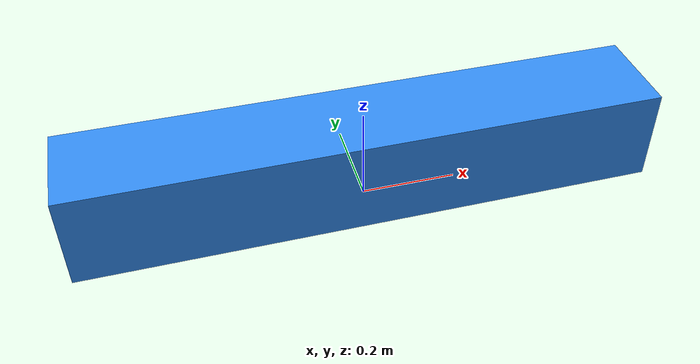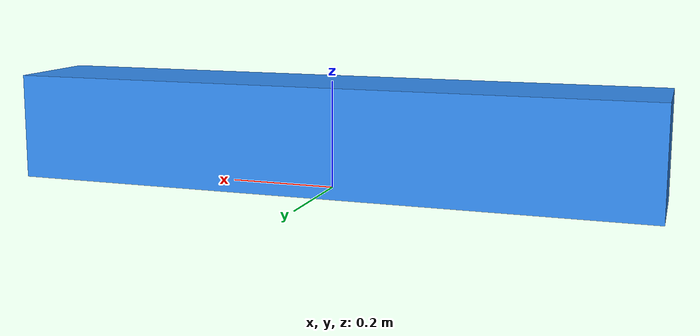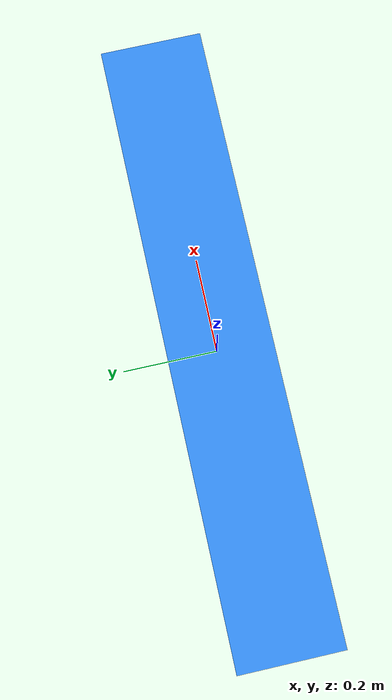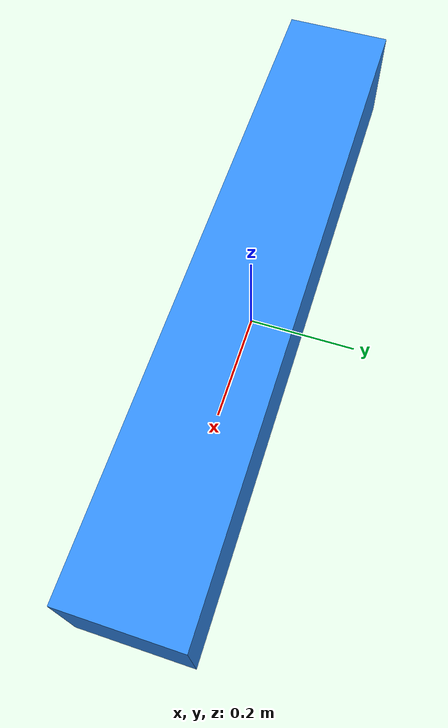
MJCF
<mujoco model="cuboid">
  <option integrator="implicitfast" timestep="0.005" gravity="0 0 -9.81"/>
  <size memory="1000M" nuser_site="6"/>
  <compiler coordinate="local"/>

  <worldbody>
    <light cutoff="30" pos="0 1 1" dir="0 -1 -2"/>
    <light cutoff="30" pos="0 -1 1" dir="0 1 -2"/>

    <!-- 1.2x0.2x0.2 free-floating bar: rotation-teaching object
         (long axis makes Z-rotation visible, unlike the symmetric cube);
         blue to tell apart from the green cube / orange small cube -->
    <body name="cuboid" pos="0 0 0.1">
      <freejoint name="cuboid_joint"/>
      <geom type="box" contype="1" conaffinity="1" density="50"
            rgba="0.20 0.55 0.95 1"
            solimp="0.5 0.7 0.01" friction="0.5 0.004 0.0003"
            solref="0.02 1" priority="0" margin="0" condim="3" group="0"
            size="0.6 0.1 0.1"
            name="cuboid_geom"/>
    </body>
  </worldbody>

  <tendon/>
  <actuator/>
  <contact/>
  <equality/>
  <asset/>
</mujoco>
